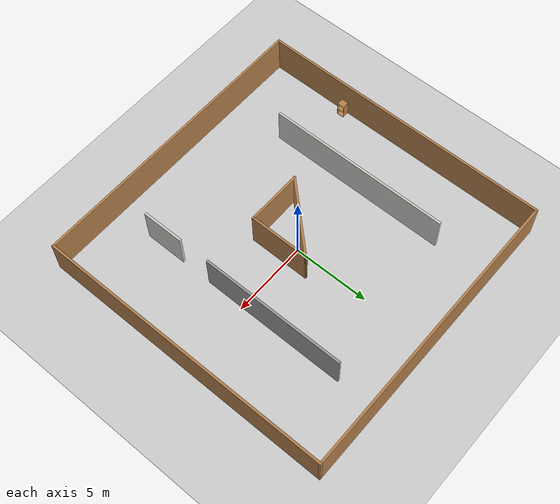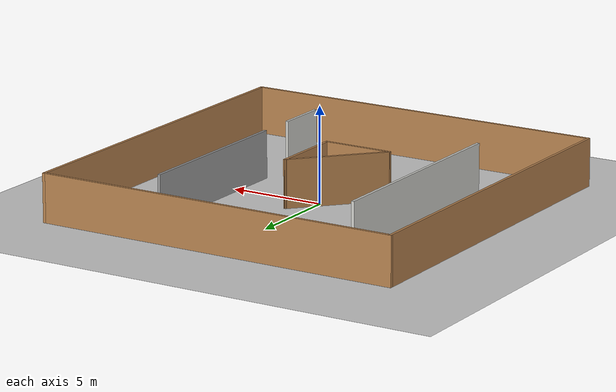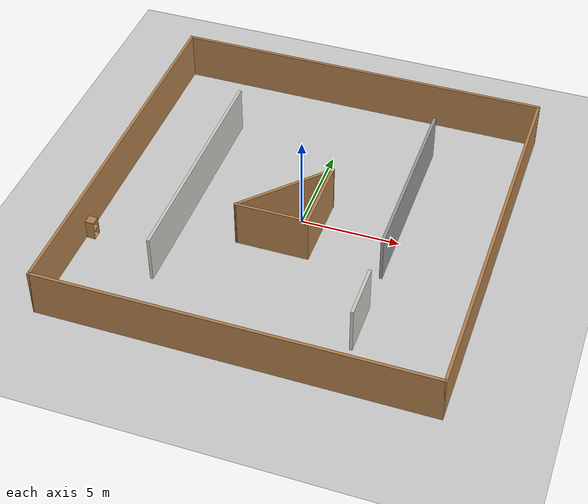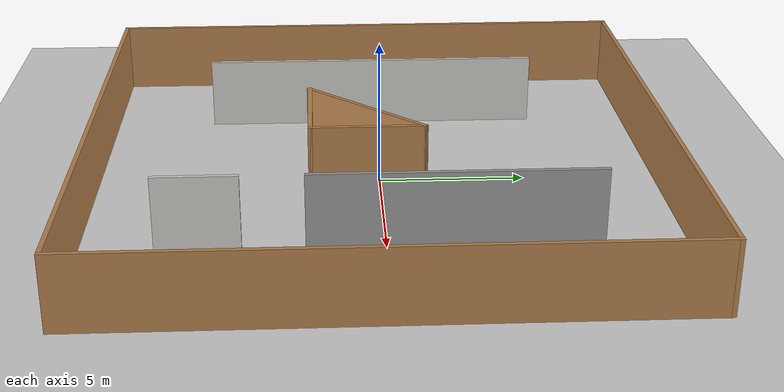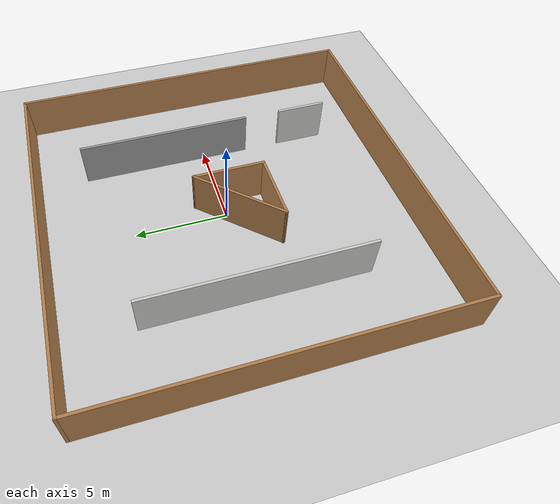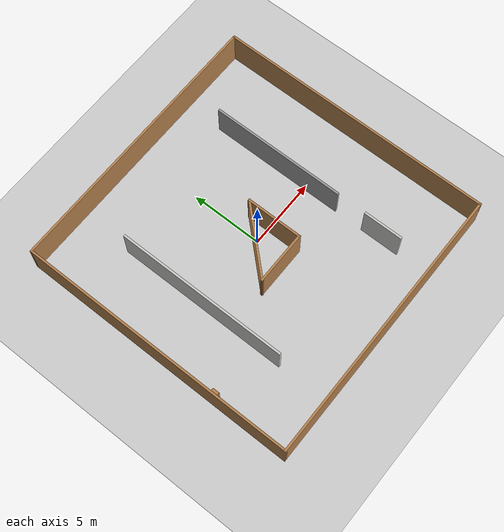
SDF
<sdf version="1.6">
 <world name="default">
  <light name="sun" type="directional">
   <pose>0 0 10 0 -0 0</pose>
   <diffuse>0.8 0.8 0.8 1</diffuse>
   <specular>0.2 0.2 0.2 1</specular>
   <attenuation>
    <range>1000</range>
    <constant>0.9</constant>
    <linear>0.01</linear>
    <quadratic>0.001</quadratic>
   </attenuation>
   <direction>-0.5 0.1 -0.9</direction>
  </light>
  <model name="ground_plane">
   <static>1</static>
   <link name="link">
    <collision name="collision">
     <geometry><plane><normal>0 0 1</normal><size>100 100</size></plane></geometry>
     <surface><friction><ode><mu>100</mu><mu2>50</mu2></ode></friction></surface>
    </collision>
    <visual name="visual">
     <cast_shadows>0</cast_shadows>
     <geometry><plane><normal>0 0 1</normal><size>100 100</size></plane></geometry>
     <material>
      <script><uri>file://media/materials/scripts/gazebo.material</uri><name>Gazebo/Grey</name></script>
     </material>
    </visual>
   </link>
  </model>
  <gravity>0 0 -9.8</gravity>
  <magnetic_field>6e-06 2.3e-05 -4.2e-05</magnetic_field>
  <atmosphere type="adiabatic"/>
  <physics name="default_physics" default="0" type="ode">
   <max_step_size>0.001</max_step_size>
   <real_time_factor>1</real_time_factor>
   <real_time_update_rate>1000</real_time_update_rate>
  </physics>
  <scene><ambient>0.4 0.4 0.4 1</ambient><background>0.7 0.7 0.7 1</background><shadows>1</shadows></scene>
  <audio><device>default</device></audio>
  <spherical_coordinates>
   <surface_model>EARTH_WGS84</surface_model>
   <latitude_deg>0</latitude_deg>
   <longitude_deg>0</longitude_deg>
   <elevation>0</elevation>
   <heading_deg>0</heading_deg>
  </spherical_coordinates>
  <model name="museum">
   <pose>-0.029135 -0.056032 0 0 -0 0</pose>
   <link name="Wall_13">
    <collision name="Wall_13_Collision">
     <geometry><box><size>19.5 0.15 2.5</size></box></geometry>
     <pose>0 0 1.25 0 -0 0</pose>
    </collision>
    <visual name="Wall_13_Visual">
     <pose>0 0 1.25 0 -0 0</pose>
     <geometry><box><size>19.5 0.15 2.5</size></box></geometry>
     <material>
      <script><uri>file://media/materials/scripts/gazebo.material</uri><name>Gazebo/Wood</name></script>
      <ambient>1 1 1 1</ambient>
     </material>
     <meta><layer>0</layer></meta>
    </visual>
    <pose>-9.675 0 0 0 -0 -1.5708</pose>
   </link>
   <link name="Wall_14">
    <collision name="Wall_14_Collision">
     <geometry><box><size>19.5 0.15 2.5</size></box></geometry>
     <pose>0 0 1.25 0 -0 0</pose>
    </collision>
    <visual name="Wall_14_Visual">
     <pose>0 0 1.25 0 -0 0</pose>
     <geometry><box><size>19.5 0.15 2.5</size></box></geometry>
     <material>
      <script><uri>file://media/materials/scripts/gazebo.material</uri><name>Gazebo/Wood</name></script>
      <ambient>1 1 1 1</ambient>
     </material>
     <meta><layer>0</layer></meta>
    </visual>
    <pose>0 -9.675 0 0 -0 0</pose>
   </link>
   <link name="Wall_15">
    <collision name="Wall_15_Collision">
     <geometry><box><size>19.5 0.15 2.5</size></box></geometry>
     <pose>0 0 1.25 0 -0 0</pose>
    </collision>
    <visual name="Wall_15_Visual">
     <pose>0 0 1.25 0 -0 0</pose>
     <geometry><box><size>19.5 0.15 2.5</size></box></geometry>
     <material>
      <script><uri>file://media/materials/scripts/gazebo.material</uri><name>Gazebo/Wood</name></script>
      <ambient>1 1 1 1</ambient>
     </material>
     <meta><layer>0</layer></meta>
    </visual>
    <pose>9.675 0 0 0 -0 1.5708</pose>
   </link>
   <link name="Wall_16">
    <collision name="Wall_16_Collision">
     <geometry><box><size>19.5 0.15 2.5</size></box></geometry>
     <pose>0 0 1.25 0 -0 0</pose>
    </collision>
    <visual name="Wall_16_Visual">
     <pose>0 0 1.25 0 -0 0</pose>
     <geometry><box><size>19.5 0.15 2.5</size></box></geometry>
     <material>
      <script><uri>file://media/materials/scripts/gazebo.material</uri><name>Gazebo/Wood</name></script>
      <ambient>1 1 1 1</ambient>
     </material>
     <meta><layer>0</layer></meta>
    </visual>
    <pose>0 9.675 0 0 -0 3.14159</pose>
   </link>
   <link name="Wall_21">
    <collision name="Wall_21_Collision">
     <geometry><box><size>12 0.15 2.5</size></box></geometry>
     <pose>0 0 1.25 0 -0 0</pose>
    </collision>
    <visual name="Wall_21_Visual">
     <pose>0 0 1.25 0 -0 0</pose>
     <geometry><box><size>12 0.15 2.5</size></box></geometry>
     <material>
      <script><uri>file://media/materials/scripts/gazebo.material</uri><name>Gazebo/CeilingTiled</name></script>
      <ambient>1 1 1 1</ambient>
     </material>
     <meta><layer>0</layer></meta>
    </visual>
    <pose>-5.43986 -0.003094 0 0 -0 -1.5708</pose>
   </link>
   <link name="Wall_23">
    <collision name="Wall_23_Collision">
     <geometry><box><size>3.75 0.15 2.5</size></box></geometry>
     <pose>0 0 1.25 0 -0 0</pose>
    </collision>
    <visual name="Wall_23_Visual">
     <pose>0 0 1.25 0 -0 0</pose>
     <geometry><box><size>3.75 0.15 2.5</size></box></geometry>
     <material>
      <script><uri>file://media/materials/scripts/gazebo.material</uri><name>Gazebo/Wood</name></script>
      <ambient>1 1 1 1</ambient>
     </material>
     <meta><layer>0</layer></meta>
    </visual>
    <pose>-0.697226 -2.31748 0 0 -0 0</pose>
   </link>
   <link name="Wall_24">
    <collision name="Wall_24_Collision">
     <geometry><box><size>4 0.15 2.5</size></box></geometry>
     <pose>0 0 1.25 0 -0 0</pose>
    </collision>
    <visual name="Wall_24_Visual">
     <pose>0 0 1.25 0 -0 0</pose>
     <geometry><box><size>4 0.15 2.5</size></box></geometry>
     <material>
      <script><uri>file://media/materials/scripts/gazebo.material</uri><name>Gazebo/Wood</name></script>
      <ambient>1 1 1 1</ambient>
     </material>
     <meta><layer>0</layer></meta>
    </visual>
    <pose>1.10277 -0.392479 0 0 -0 1.5708</pose>
   </link>
   <link name="Wall_25">
    <collision name="Wall_25_Collision">
     <geometry><box><size>5.42091 0.15 2.5</size></box></geometry>
     <pose>0 0 1.25 0 -0 0</pose>
    </collision>
    <visual name="Wall_25_Visual">
     <pose>0 0 1.25 0 -0 0</pose>
     <geometry><box><size>5.42091 0.15 2.5</size></box></geometry>
     <material>
      <script><uri>file://media/materials/scripts/gazebo.material</uri><name>Gazebo/Wood</name></script>
      <ambient>1 1 1 1</ambient>
     </material>
     <meta><layer>0</layer></meta>
    </visual>
    <pose>-0.697226 -0.392479 0 0 -0 -2.32265</pose>
   </link>
   <link name="Wall_28">
    <collision name="Wall_28_Collision">
     <geometry><box><size>9.5 0.15 2.5</size></box></geometry>
     <pose>0 0 1.25 0 -0 0</pose>
    </collision>
    <visual name="Wall_28_Visual">
     <pose>0 0 1.25 0 -0 0</pose>
     <geometry><box><size>9.5 0.15 2.5</size></box></geometry>
     <material>
      <script><uri>file://media/materials/scripts/gazebo.material</uri><name>Gazebo/Grey</name></script>
      <ambient>1 1 1 1</ambient>
     </material>
     <meta><layer>0</layer></meta>
    </visual>
    <pose>4.83262 2.26345 0 0 -0 -1.5708</pose>
   </link>
   <link name="Wall_31">
    <collision name="Wall_31_Collision">
     <geometry><box><size>2.75 0.15 2.5</size></box></geometry>
     <pose>0 0 1.25 0 -0 0</pose>
    </collision>
    <visual name="Wall_31_Visual">
     <pose>0 0 1.25 0 -0 0</pose>
     <geometry><box><size>2.75 0.15 2.5</size></box></geometry>
     <material>
      <script><uri>file://media/materials/scripts/gazebo.material</uri><name>Gazebo/CeilingTiled</name></script>
      <ambient>1 1 1 1</ambient>
     </material>
     <meta><layer>0</layer></meta>
    </visual>
    <pose>4.83262 -5.86458 0 0 -0 -1.5708</pose>
   </link>
   <static>1</static>
  </model>
  <model name="cabinet">
   <static>1</static>
   <link name="cabinet_bottom_plate">
    <inertial>
     <pose>0 0 -1 0 -0 0</pose>
     <inertia><ixx>2.05</ixx><ixy>0</ixy><ixz>0</ixz><iyy>2.05</iyy><iyz>0</iyz><izz>2.05</izz></inertia>
     <mass>25</mass>
    </inertial>
    <collision name="cabinet_bottom_plate_geom">
     <pose>0 0 0.01 0 -0 0</pose>
     <geometry><box><size>0.45 0.45 0.02</size></box></geometry>
    </collision>
    <visual name="cabinet_bottom_plate_geom_visual">
     <pose>0 0 0.01 0 -0 0</pose>
     <geometry><box><size>0.45 0.45 0.02</size></box></geometry>
     <material>
      <script><uri>file://media/materials/scripts/gazebo.material</uri><name>Gazebo/Wood</name></script>
     </material>
    </visual>
    <collision name="cabinet_bottom_plate_geom_cabinet_back_plate">
     <pose>0.235 0 0.51 0 -0 0</pose>
     <geometry><box><size>0.02 0.45 1.02</size></box></geometry>
    </collision>
    <visual name="cabinet_bottom_plate_geom_cabinet_back_plate_visual">
     <pose>0.235 0 0.51 0 -0 0</pose>
     <geometry><box><size>0.02 0.45 1.02</size></box></geometry>
     <material>
      <script><uri>file://media/materials/scripts/gazebo.material</uri><name>Gazebo/Wood</name></script>
     </material>
    </visual>
    <collision name="cabinet_bottom_plate_geom_cabinet_left_plate">
     <pose>0 0.235 0.51 0 -0 0</pose>
     <geometry><box><size>0.45 0.02 1.02</size></box></geometry>
    </collision>
    <visual name="cabinet_bottom_plate_geom_cabinet_left_plate_visual">
     <pose>0 0.235 0.51 0 -0 0</pose>
     <geometry><box><size>0.45 0.02 1.02</size></box></geometry>
     <material>
      <script><uri>file://media/materials/scripts/gazebo.material</uri><name>Gazebo/Wood</name></script>
     </material>
    </visual>
    <collision name="cabinet_bottom_plate_geom_cabinet_middle_plate">
     <pose>0 0 0.51 0 -0 0</pose>
     <geometry><box><size>0.45 0.45 0.02</size></box></geometry>
    </collision>
    <visual name="cabinet_bottom_plate_geom_cabinet_middle_plate_visual">
     <pose>0 0 0.51 0 -0 0</pose>
     <geometry><box><size>0.45 0.45 0.02</size></box></geometry>
     <material>
      <script><uri>file://media/materials/scripts/gazebo.material</uri><name>Gazebo/Wood</name></script>
     </material>
    </visual>
    <collision name="cabinet_bottom_plate_geom_cabinet_right_plate">
     <pose>0 -0.235 0.51 0 -0 0</pose>
     <geometry><box><size>0.45 0.02 1.02</size></box></geometry>
    </collision>
    <visual name="cabinet_bottom_plate_geom_cabinet_right_plate_visual">
     <pose>0 -0.235 0.51 0 -0 0</pose>
     <geometry><box><size>0.45 0.02 1.02</size></box></geometry>
     <material>
      <script><uri>file://media/materials/scripts/gazebo.material</uri><name>Gazebo/Wood</name></script>
     </material>
    </visual>
    <collision name="cabinet_bottom_plate_geom_cabinet_top_plate">
     <pose>0 0 1.01 0 -0 0</pose>
     <geometry><box><size>0.45 0.45 0.02</size></box></geometry>
    </collision>
    <visual name="cabinet_bottom_plate_geom_cabinet_top_plate_visual">
     <pose>0 0 1.01 0 -0 0</pose>
     <geometry><box><size>0.45 0.45 0.02</size></box></geometry>
     <material>
      <script><uri>file://media/materials/scripts/gazebo.material</uri><name>Gazebo/Wood</name></script>
     </material>
    </visual>
   </link>
   <pose>-9.38681 -4.22538 0 0 -0 3.12453</pose>
  </model>
 </world>
</sdf>
